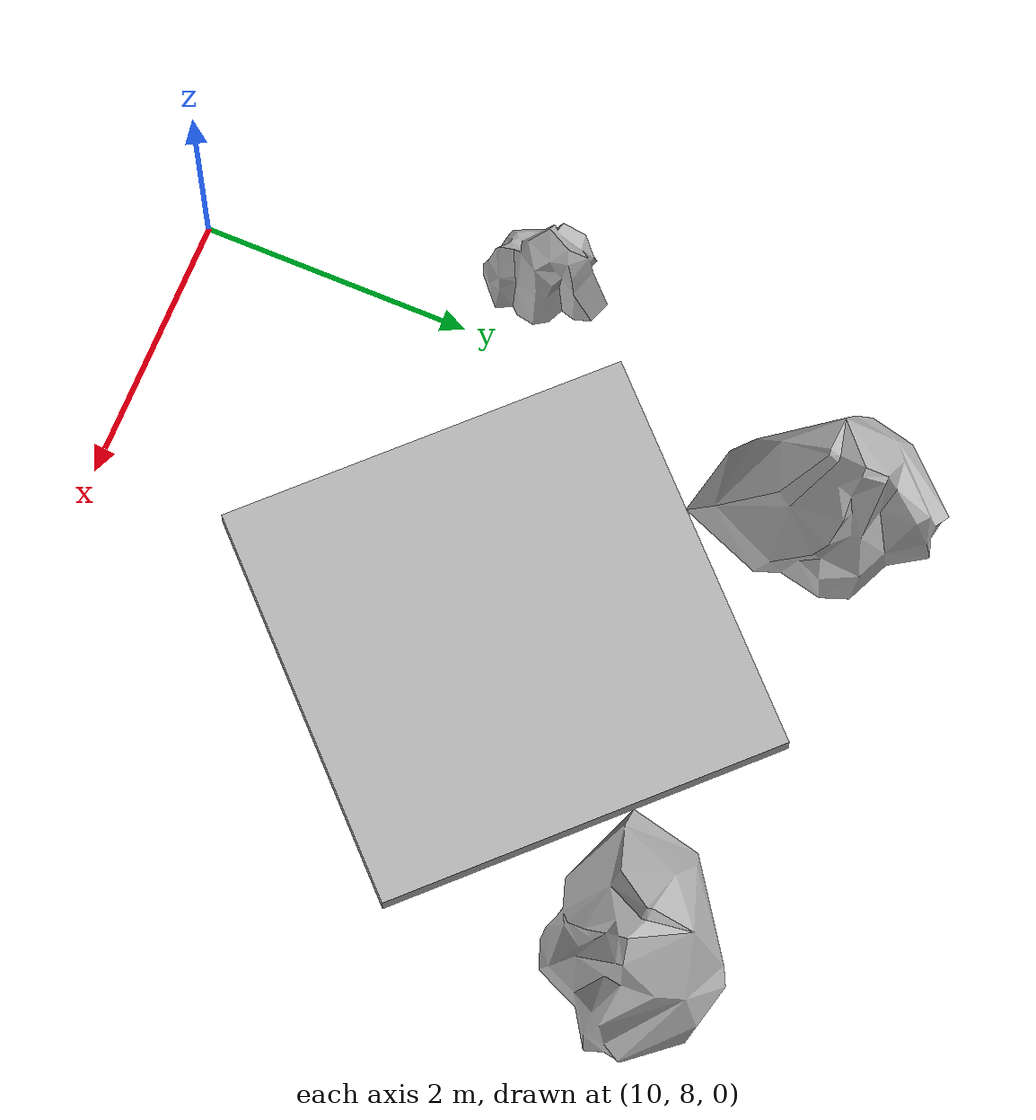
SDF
<sdf version="1.6">
 <world name="SRC_finals">
  <include>
   <name>bling_10</name>
   <pose>9.473602740230369
      10.407456005147331
      0
      0
      0
      0.7853981633974481</pose>
   <uri>model://mars_rock_2</uri>
  </include>
  <include>
   <name>walkway_11</name>
   <pose>11.98241759988024
      11.131533349082357
      -0.052151
      0
      0
      -2.3561944901923453</pose>
   <uri>model://walkway_finish_adjacent</uri>
  </include>
  <include>
   <name>bling_12</name>
   <pose>13.83786579371374
      12.986981542915858
      0
      0
      0
      -0.7853981633974485</pose>
   <uri>model://mars_rock_3</uri>
  </include>
  <include>
   <name>bling_13</name>
   <pose>10.126969406046738
      12.986981542915858
      0
      0
      0
      0.785398163397448</pose>
   <uri>model://mars_rock_3</uri>
  </include>
 </world>
</sdf>
